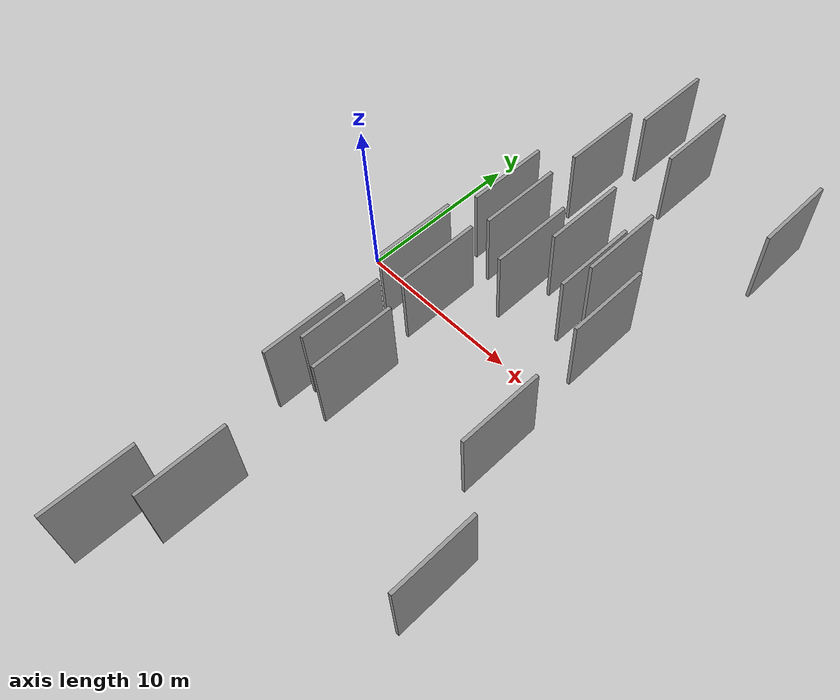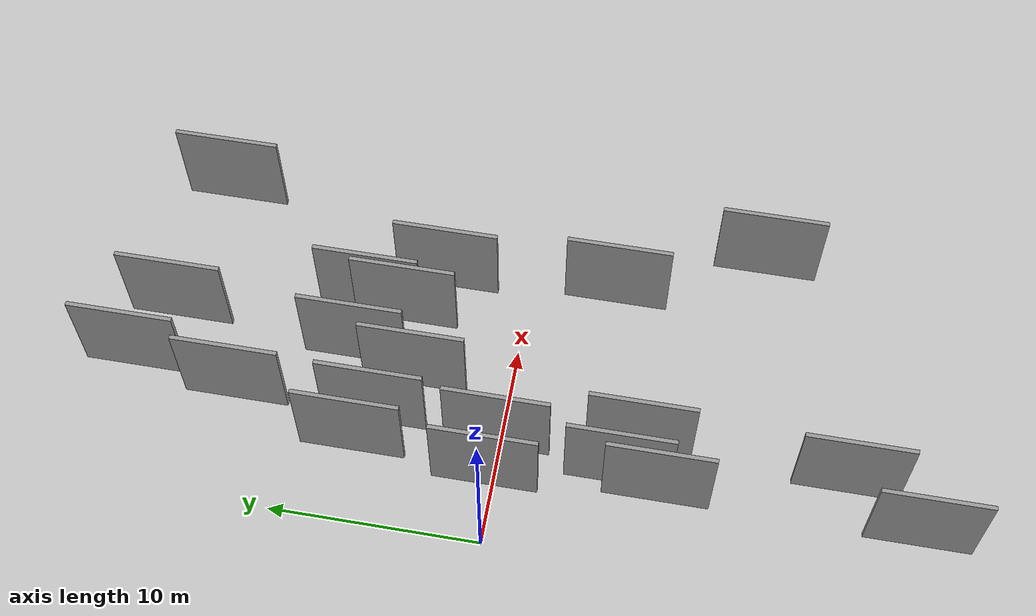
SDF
<sdf version="1.6">
 <world name="default">
  <scene>
   <sky><clouds><speed>12</speed></clouds></sky>
   <ambient>0.4 0.4 0.4 1</ambient>
   <background>0.7 0.7 0.7 1</background>
   <shadows>1</shadows>
  </scene>
  <gravity>0 0 -9.8066</gravity>
  <magnetic_field>6e-06 2.3e-05 -4.2e-05</magnetic_field>
  <physics default="0" name="default_physics" type="ode">
   <ode>
    <solver>
     <type>quick</type>
     <iters>10</iters>
     <sor>1.0</sor>
     <use_dynamic_moi_rescaling>0</use_dynamic_moi_rescaling>
    </solver>
    <constraints>
     <cfm>0</cfm>
     <erp>0.2</erp>
     <contact_max_correcting_vel>100</contact_max_correcting_vel>
     <contact_surface_layer>0.001</contact_surface_layer>
    </constraints>
   </ode>
   <max_step_size>0.004</max_step_size>
   <real_time_factor>1</real_time_factor>
   <real_time_update_rate>250</real_time_update_rate>
  </physics>
  <light name="sun" type="directional">
   <pose>0 0 10 0 0 0</pose>
   <diffuse>0.8 0.8 0.8 1</diffuse>
   <specular>0.2 0.2 0.2 1</specular>
   <attenuation>
    <range>1000</range>
    <constant>0.9</constant>
    <linear>0.01</linear>
    <quadratic>0.001</quadratic>
   </attenuation>
   <direction>-0.5 0.1 -0.9</direction>
  </light>
  <model name="grey_wall_1">
   <static>1</static>
   <pose>5.4401 12.8027 0.0 0.000000 0.000000 1.570796</pose>
   <link name="link">
    <pose>0 0 2.50 0 0 0</pose>
    <collision name="collision"><geometry><box><size>5.00 0.2 5.00</size></box></geometry></collision>
    <visual name="visual">
     <cast_shadows>0</cast_shadows>
     <geometry><box><size>5.00 0.2 5.00</size></box></geometry>
     <material>
      <script>
       <uri>model://grey_wall/materials/scripts</uri>
       <uri>model://grey_wall/materials/textures</uri>
       <name>vrc/grey_wall</name>
      </script>
     </material>
    </visual>
   </link>
  </model>
  <model name="grey_wall_2">
   <static>1</static>
   <pose>5.5367 -16.1095 0.0 0.000000 0.000000 1.570796</pose>
   <link name="link">
    <pose>0 0 2.50 0 0 0</pose>
    <collision name="collision"><geometry><box><size>5.00 0.2 5.00</size></box></geometry></collision>
    <visual name="visual">
     <cast_shadows>0</cast_shadows>
     <geometry><box><size>5.00 0.2 5.00</size></box></geometry>
     <material>
      <script>
       <uri>model://grey_wall/materials/scripts</uri>
       <uri>model://grey_wall/materials/textures</uri>
       <name>vrc/grey_wall</name>
      </script>
     </material>
    </visual>
   </link>
  </model>
  <model name="grey_wall_3">
   <static>1</static>
   <pose>3.4384 -19.5930 0.0 0.000000 0.000000 1.570796</pose>
   <link name="link">
    <pose>0 0 2.50 0 0 0</pose>
    <collision name="collision"><geometry><box><size>5.00 0.2 5.00</size></box></geometry></collision>
    <visual name="visual">
     <cast_shadows>0</cast_shadows>
     <geometry><box><size>5.00 0.2 5.00</size></box></geometry>
     <material>
      <script>
       <uri>model://grey_wall/materials/scripts</uri>
       <uri>model://grey_wall/materials/textures</uri>
       <name>vrc/grey_wall</name>
      </script>
     </material>
    </visual>
   </link>
  </model>
  <model name="grey_wall_4">
   <static>1</static>
   <pose>16.5443 15.5215 0.0 0.000000 0.000000 1.570796</pose>
   <link name="link">
    <pose>0 0 2.50 0 0 0</pose>
    <collision name="collision"><geometry><box><size>5.00 0.2 5.00</size></box></geometry></collision>
    <visual name="visual">
     <cast_shadows>0</cast_shadows>
     <geometry><box><size>5.00 0.2 5.00</size></box></geometry>
     <material>
      <script>
       <uri>model://grey_wall/materials/scripts</uri>
       <uri>model://grey_wall/materials/textures</uri>
       <name>vrc/grey_wall</name>
      </script>
     </material>
    </visual>
   </link>
  </model>
  <model name="grey_wall_5">
   <static>1</static>
   <pose>3.6956 6.8083 0.0 0.000000 0.000000 1.570796</pose>
   <link name="link">
    <pose>0 0 2.50 0 0 0</pose>
    <collision name="collision"><geometry><box><size>5.00 0.2 5.00</size></box></geometry></collision>
    <visual name="visual">
     <cast_shadows>0</cast_shadows>
     <geometry><box><size>5.00 0.2 5.00</size></box></geometry>
     <material>
      <script>
       <uri>model://grey_wall/materials/scripts</uri>
       <uri>model://grey_wall/materials/textures</uri>
       <name>vrc/grey_wall</name>
      </script>
     </material>
    </visual>
   </link>
  </model>
  <model name="grey_wall_6">
   <static>1</static>
   <pose>16.6727 -11.1894 0.0 0.000000 0.000000 1.570796</pose>
   <link name="link">
    <pose>0 0 2.50 0 0 0</pose>
    <collision name="collision"><geometry><box><size>5.00 0.2 5.00</size></box></geometry></collision>
    <visual name="visual">
     <cast_shadows>0</cast_shadows>
     <geometry><box><size>5.00 0.2 5.00</size></box></geometry>
     <material>
      <script>
       <uri>model://grey_wall/materials/scripts</uri>
       <uri>model://grey_wall/materials/textures</uri>
       <name>vrc/grey_wall</name>
      </script>
     </material>
    </visual>
   </link>
  </model>
  <model name="grey_wall_7">
   <static>1</static>
   <pose>4.1768 -5.6454 0.0 0.000000 0.000000 1.570796</pose>
   <link name="link">
    <pose>0 0 2.50 0 0 0</pose>
    <collision name="collision"><geometry><box><size>5.00 0.2 5.00</size></box></geometry></collision>
    <visual name="visual">
     <cast_shadows>0</cast_shadows>
     <geometry><box><size>5.00 0.2 5.00</size></box></geometry>
     <material>
      <script>
       <uri>model://grey_wall/materials/scripts</uri>
       <uri>model://grey_wall/materials/textures</uri>
       <name>vrc/grey_wall</name>
      </script>
     </material>
    </visual>
   </link>
  </model>
  <model name="grey_wall_8">
   <static>1</static>
   <pose>13.2646 4.0858 0.0 0.000000 0.000000 1.570796</pose>
   <link name="link">
    <pose>0 0 2.50 0 0 0</pose>
    <collision name="collision"><geometry><box><size>5.00 0.2 5.00</size></box></geometry></collision>
    <visual name="visual">
     <cast_shadows>0</cast_shadows>
     <geometry><box><size>5.00 0.2 5.00</size></box></geometry>
     <material>
      <script>
       <uri>model://grey_wall/materials/scripts</uri>
       <uri>model://grey_wall/materials/textures</uri>
       <name>vrc/grey_wall</name>
      </script>
     </material>
    </visual>
   </link>
  </model>
  <model name="grey_wall_9">
   <static>1</static>
   <pose>9.3192 16.5121 0.0 0.000000 0.000000 1.570796</pose>
   <link name="link">
    <pose>0 0 2.50 0 0 0</pose>
    <collision name="collision"><geometry><box><size>5.00 0.2 5.00</size></box></geometry></collision>
    <visual name="visual">
     <cast_shadows>0</cast_shadows>
     <geometry><box><size>5.00 0.2 5.00</size></box></geometry>
     <material>
      <script>
       <uri>model://grey_wall/materials/scripts</uri>
       <uri>model://grey_wall/materials/textures</uri>
       <name>vrc/grey_wall</name>
      </script>
     </material>
    </visual>
   </link>
  </model>
  <model name="grey_wall_10">
   <static>1</static>
   <pose>3.0445 0.4032 0.0 0.000000 0.000000 1.570796</pose>
   <link name="link">
    <pose>0 0 2.50 0 0 0</pose>
    <collision name="collision"><geometry><box><size>5.00 0.2 5.00</size></box></geometry></collision>
    <visual name="visual">
     <cast_shadows>0</cast_shadows>
     <geometry><box><size>5.00 0.2 5.00</size></box></geometry>
     <material>
      <script>
       <uri>model://grey_wall/materials/scripts</uri>
       <uri>model://grey_wall/materials/textures</uri>
       <name>vrc/grey_wall</name>
      </script>
     </material>
    </visual>
   </link>
  </model>
  <model name="grey_wall_11">
   <static>1</static>
   <pose>5.0225 0.1860 0.0 0.000000 0.000000 1.570796</pose>
   <link name="link">
    <pose>0 0 2.50 0 0 0</pose>
    <collision name="collision"><geometry><box><size>5.00 0.2 5.00</size></box></geometry></collision>
    <visual name="visual">
     <cast_shadows>0</cast_shadows>
     <geometry><box><size>5.00 0.2 5.00</size></box></geometry>
     <material>
      <script>
       <uri>model://grey_wall/materials/scripts</uri>
       <uri>model://grey_wall/materials/textures</uri>
       <name>vrc/grey_wall</name>
      </script>
     </material>
    </visual>
   </link>
  </model>
  <model name="grey_wall_12">
   <static>1</static>
   <pose>10.9550 5.6868 0.0 0.000000 0.000000 1.570796</pose>
   <link name="link">
    <pose>0 0 2.50 0 0 0</pose>
    <collision name="collision"><geometry><box><size>5.00 0.2 5.00</size></box></geometry></collision>
    <visual name="visual">
     <cast_shadows>0</cast_shadows>
     <geometry><box><size>5.00 0.2 5.00</size></box></geometry>
     <material>
      <script>
       <uri>model://grey_wall/materials/scripts</uri>
       <uri>model://grey_wall/materials/textures</uri>
       <name>vrc/grey_wall</name>
      </script>
     </material>
    </visual>
   </link>
  </model>
  <model name="grey_wall_13">
   <static>1</static>
   <pose>5.8971 -6.3925 0.0 0.000000 0.000000 1.570796</pose>
   <link name="link">
    <pose>0 0 2.50 0 0 0</pose>
    <collision name="collision"><geometry><box><size>5.00 0.2 5.00</size></box></geometry></collision>
    <visual name="visual">
     <cast_shadows>0</cast_shadows>
     <geometry><box><size>5.00 0.2 5.00</size></box></geometry>
     <material>
      <script>
       <uri>model://grey_wall/materials/scripts</uri>
       <uri>model://grey_wall/materials/textures</uri>
       <name>vrc/grey_wall</name>
      </script>
     </material>
    </visual>
   </link>
  </model>
  <model name="grey_wall_14">
   <static>1</static>
   <pose>7.5846 4.5986 0.0 0.000000 0.000000 1.570796</pose>
   <link name="link">
    <pose>0 0 2.50 0 0 0</pose>
    <collision name="collision"><geometry><box><size>5.00 0.2 5.00</size></box></geometry></collision>
    <visual name="visual">
     <cast_shadows>0</cast_shadows>
     <geometry><box><size>5.00 0.2 5.00</size></box></geometry>
     <material>
      <script>
       <uri>model://grey_wall/materials/scripts</uri>
       <uri>model://grey_wall/materials/textures</uri>
       <name>vrc/grey_wall</name>
      </script>
     </material>
    </visual>
   </link>
  </model>
  <model name="grey_wall_15">
   <static>1</static>
   <pose>11.2767 7.5170 0.0 0.000000 0.000000 1.570796</pose>
   <link name="link">
    <pose>0 0 2.50 0 0 0</pose>
    <collision name="collision"><geometry><box><size>5.00 0.2 5.00</size></box></geometry></collision>
    <visual name="visual">
     <cast_shadows>0</cast_shadows>
     <geometry><box><size>5.00 0.2 5.00</size></box></geometry>
     <material>
      <script>
       <uri>model://grey_wall/materials/scripts</uri>
       <uri>model://grey_wall/materials/textures</uri>
       <name>vrc/grey_wall</name>
      </script>
     </material>
    </visual>
   </link>
  </model>
  <model name="grey_wall_16">
   <static>1</static>
   <pose>5.3301 6.0891 0.0 0.000000 0.000000 1.570796</pose>
   <link name="link">
    <pose>0 0 2.50 0 0 0</pose>
    <collision name="collision"><geometry><box><size>5.00 0.2 5.00</size></box></geometry></collision>
    <visual name="visual">
     <cast_shadows>0</cast_shadows>
     <geometry><box><size>5.00 0.2 5.00</size></box></geometry>
     <material>
      <script>
       <uri>model://grey_wall/materials/scripts</uri>
       <uri>model://grey_wall/materials/textures</uri>
       <name>vrc/grey_wall</name>
      </script>
     </material>
    </visual>
   </link>
  </model>
  <model name="grey_wall_17">
   <static>1</static>
   <pose>13.7609 -4.1693 0.0 0.000000 0.000000 1.570796</pose>
   <link name="link">
    <pose>0 0 2.50 0 0 0</pose>
    <collision name="collision"><geometry><box><size>5.00 0.2 5.00</size></box></geometry></collision>
    <visual name="visual">
     <cast_shadows>0</cast_shadows>
     <geometry><box><size>5.00 0.2 5.00</size></box></geometry>
     <material>
      <script>
       <uri>model://grey_wall/materials/scripts</uri>
       <uri>model://grey_wall/materials/textures</uri>
       <name>vrc/grey_wall</name>
      </script>
     </material>
    </visual>
   </link>
  </model>
  <model name="grey_wall_18">
   <static>1</static>
   <pose>8.5477 7.6848 0.0 0.000000 0.000000 1.570796</pose>
   <link name="link">
    <pose>0 0 2.50 0 0 0</pose>
    <collision name="collision"><geometry><box><size>5.00 0.2 5.00</size></box></geometry></collision>
    <visual name="visual">
     <cast_shadows>0</cast_shadows>
     <geometry><box><size>5.00 0.2 5.00</size></box></geometry>
     <material>
      <script>
       <uri>model://grey_wall/materials/scripts</uri>
       <uri>model://grey_wall/materials/textures</uri>
       <name>vrc/grey_wall</name>
      </script>
     </material>
    </visual>
   </link>
  </model>
  <model name="grey_wall_19">
   <static>1</static>
   <pose>6.3274 17.9553 0.0 0.000000 0.000000 1.570796</pose>
   <link name="link">
    <pose>0 0 2.50 0 0 0</pose>
    <collision name="collision"><geometry><box><size>5.00 0.2 5.00</size></box></geometry></collision>
    <visual name="visual">
     <cast_shadows>0</cast_shadows>
     <geometry><box><size>5.00 0.2 5.00</size></box></geometry>
     <material>
      <script>
       <uri>model://grey_wall/materials/scripts</uri>
       <uri>model://grey_wall/materials/textures</uri>
       <name>vrc/grey_wall</name>
      </script>
     </material>
    </visual>
   </link>
  </model>
  <model name="grey_wall_20">
   <static>1</static>
   <pose>3.5800 -7.5036 0.0 0.000000 0.000000 1.570796</pose>
   <link name="link">
    <pose>0 0 2.50 0 0 0</pose>
    <collision name="collision"><geometry><box><size>5.00 0.2 5.00</size></box></geometry></collision>
    <visual name="visual">
     <cast_shadows>0</cast_shadows>
     <geometry><box><size>5.00 0.2 5.00</size></box></geometry>
     <material>
      <script>
       <uri>model://grey_wall/materials/scripts</uri>
       <uri>model://grey_wall/materials/textures</uri>
       <name>vrc/grey_wall</name>
      </script>
     </material>
    </visual>
   </link>
  </model>
 </world>
</sdf>
